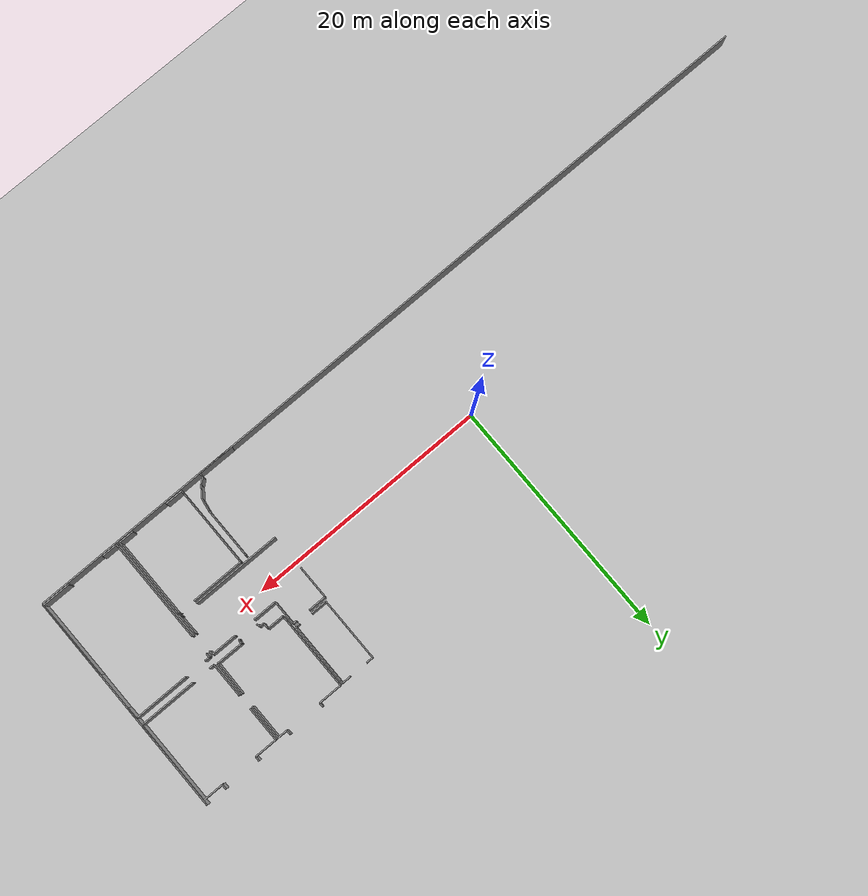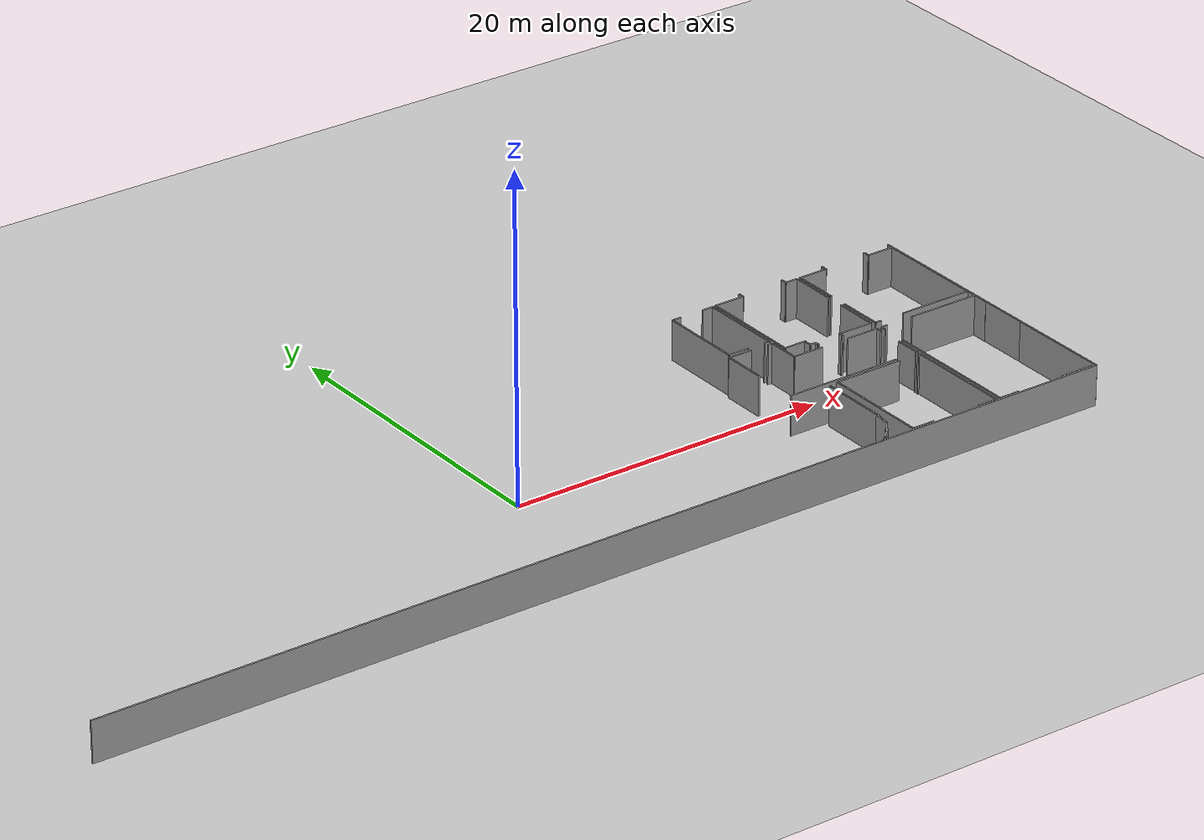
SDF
<sdf version="1.6">
 <world name="default">
  <model name="ground_plane">
   <static>1</static>
   <link name="link">
    <collision name="collision">
     <geometry><plane><normal>0 0 1</normal><size>100 100</size></plane></geometry>
     <surface><friction><ode><mu>100</mu><mu2>50</mu2></ode></friction></surface>
    </collision>
    <visual name="visual">
     <cast_shadows>0</cast_shadows>
     <geometry><plane><normal>0 0 1</normal><size>100 100</size></plane></geometry>
     <material>
      <script><uri>file://media/materials/scripts/gazebo.material</uri><name>Gazebo/Grey</name></script>
     </material>
    </visual>
   </link>
  </model>
  <model name="0510034869_A-40">
   <static>1</static>
   <link name="Wall_174">
    <collision name="Wall_174_Collision">
     <geometry><box><size>0.133587301587 0.1 2.5</size></box></geometry>
     <pose>0.0667936507936 0 1.25 0 0 0</pose>
    </collision>
    <visual name="Wall_174_Visual">
     <pose>0.0667936507936 0 1.25 0 0 0</pose>
     <geometry><box><size>0.133587301587 0.1 2.5</size></box></geometry>
     <material>
      <script><uri>file://media/materials/scripts/gazebo.material</uri><name>Gazebo/Grey</name></script>
      <ambient>1 1 1 1</ambient>
     </material>
    </visual>
    <pose>58.0534603175 -11.496 0 0 0 3.14159265359</pose>
   </link>
   <link name="Wall_175">
    <collision name="Wall_175_Collision">
     <geometry><box><size>7.32088888889 0.1 2.5</size></box></geometry>
     <pose>3.66044444444 0 1.25 0 0 0</pose>
    </collision>
    <visual name="Wall_175_Visual">
     <pose>3.66044444444 0 1.25 0 0 0</pose>
     <geometry><box><size>7.32088888889 0.1 2.5</size></box></geometry>
     <material>
      <script><uri>file://media/materials/scripts/gazebo.material</uri><name>Gazebo/Grey</name></script>
      <ambient>1 1 1 1</ambient>
     </material>
    </visual>
    <pose>56.5498412698 -11.496 0 0 0 3.14159265359</pose>
   </link>
   <link name="Wall_177">
    <collision name="Wall_177_Collision">
     <geometry><box><size>2.73714285714 0.1 2.5</size></box></geometry>
     <pose>1.36857142857 0 1.25 0 0 0</pose>
    </collision>
    <visual name="Wall_177_Visual">
     <pose>1.36857142857 0 1.25 0 0 0</pose>
     <geometry><box><size>2.73714285714 0.1 2.5</size></box></geometry>
     <material>
      <script><uri>file://media/materials/scripts/gazebo.material</uri><name>Gazebo/Grey</name></script>
      <ambient>1 1 1 1</ambient>
     </material>
    </visual>
    <pose>49.228952381 -8.64914285714 0 0 0 1.57079632679</pose>
   </link>
   <link name="Wall_178">
    <collision name="Wall_178_Collision">
     <geometry><box><size>1.4940952381 0.1 2.5</size></box></geometry>
     <pose>0.747047619048 0 1.25 0 0 0</pose>
    </collision>
    <visual name="Wall_178_Visual">
     <pose>0.747047619048 0 1.25 0 0 0</pose>
     <geometry><box><size>1.4940952381 0.1 2.5</size></box></geometry>
     <material>
      <script><uri>file://media/materials/scripts/gazebo.material</uri><name>Gazebo/Grey</name></script>
      <ambient>1 1 1 1</ambient>
     </material>
    </visual>
    <pose>49.228952381 -5.912 0 0 0 0.0</pose>
   </link>
   <link name="Wall_179">
    <collision name="Wall_179_Collision">
     <geometry><box><size>0.30946031746 0.1 2.5</size></box></geometry>
     <pose>0.15473015873 0 1.25 0 0 0</pose>
    </collision>
    <visual name="Wall_179_Visual">
     <pose>0.15473015873 0 1.25 0 0 0</pose>
     <geometry><box><size>0.30946031746 0.1 2.5</size></box></geometry>
     <material>
      <script><uri>file://media/materials/scripts/gazebo.material</uri><name>Gazebo/Grey</name></script>
      <ambient>1 1 1 1</ambient>
     </material>
    </visual>
    <pose>51.8915555556 -5.912 0 0 0 0.0</pose>
   </link>
   <link name="Wall_180">
    <collision name="Wall_180_Collision">
     <geometry><box><size>2.02184126984 0.1 2.5</size></box></geometry>
     <pose>1.01092063492 0 1.25 0 0 0</pose>
    </collision>
    <visual name="Wall_180_Visual">
     <pose>1.01092063492 0 1.25 0 0 0</pose>
     <geometry><box><size>2.02184126984 0.1 2.5</size></box></geometry>
     <material>
      <script><uri>file://media/materials/scripts/gazebo.material</uri><name>Gazebo/Grey</name></script>
      <ambient>1 1 1 1</ambient>
     </material>
    </visual>
    <pose>52.201015873 -5.912 0 0 0 -1.57079632679</pose>
   </link>
   <link name="Wall_181">
    <collision name="Wall_181_Collision">
     <geometry><box><size>1.96342857143 0.1 2.5</size></box></geometry>
     <pose>0.981714285714 0 1.25 0 0 0</pose>
    </collision>
    <visual name="Wall_181_Visual">
     <pose>0.981714285714 0 1.25 0 0 0</pose>
     <geometry><box><size>1.96342857143 0.1 2.5</size></box></geometry>
     <material>
      <script><uri>file://media/materials/scripts/gazebo.material</uri><name>Gazebo/Grey</name></script>
      <ambient>1 1 1 1</ambient>
     </material>
    </visual>
    <pose>52.201015873 -7.93384126984 0 0 0 0.0</pose>
   </link>
   <link name="Wall_182">
    <collision name="Wall_182_Collision">
     <geometry><box><size>2.09828571429 0.1 2.5</size></box></geometry>
     <pose>1.04914285714 0 1.25 0 0 0</pose>
    </collision>
    <visual name="Wall_182_Visual">
     <pose>1.04914285714 0 1.25 0 0 0</pose>
     <geometry><box><size>2.09828571429 0.1 2.5</size></box></geometry>
     <material>
      <script><uri>file://media/materials/scripts/gazebo.material</uri><name>Gazebo/Grey</name></script>
      <ambient>1 1 1 1</ambient>
     </material>
    </visual>
    <pose>55.9141587302 -7.93384126984 0 0 0 0.0</pose>
   </link>
   <link name="Wall_183">
    <collision name="Wall_183_Collision">
     <geometry><box><size>0.352380952381 0.1 2.5</size></box></geometry>
     <pose>0.17619047619 0 1.25 0 0 0</pose>
    </collision>
    <visual name="Wall_183_Visual">
     <pose>0.17619047619 0 1.25 0 0 0</pose>
     <geometry><box><size>0.352380952381 0.1 2.5</size></box></geometry>
     <material>
      <script><uri>file://media/materials/scripts/gazebo.material</uri><name>Gazebo/Grey</name></script>
      <ambient>1 1 1 1</ambient>
     </material>
    </visual>
    <pose>58.0124444444 -7.93384126984 0 0 0 -1.57079632679</pose>
   </link>
   <link name="Wall_184">
    <collision name="Wall_184_Collision">
     <geometry><box><size>1.62870701128 0.1 2.5</size></box></geometry>
     <pose>0.814353505641 0 1.25 0 0 0</pose>
    </collision>
    <visual name="Wall_184_Visual">
     <pose>0.814353505641 0 1.25 0 0 0</pose>
     <geometry><box><size>1.62870701128 0.1 2.5</size></box></geometry>
     <material>
      <script><uri>file://media/materials/scripts/gazebo.material</uri><name>Gazebo/Grey</name></script>
      <ambient>1 1 1 1</ambient>
     </material>
    </visual>
    <pose>58.0124444444 -9.86780952381 0 0 0 -1.5456105756</pose>
   </link>
   <link name="Wall_185">
    <collision name="Wall_185_Collision">
     <geometry><box><size>0.320888888889 0.1 2.5</size></box></geometry>
     <pose>0.160444444444 0 1.25 0 0 0</pose>
    </collision>
    <visual name="Wall_185_Visual">
     <pose>0.160444444444 0 1.25 0 0 0</pose>
     <geometry><box><size>0.320888888889 0.1 2.5</size></box></geometry>
     <material>
      <script><uri>file://media/materials/scripts/gazebo.material</uri><name>Gazebo/Grey</name></script>
      <ambient>1 1 1 1</ambient>
     </material>
    </visual>
    <pose>52.1946666667 -5.62946031746 0 0 0 3.14159265359</pose>
   </link>
   <link name="Wall_186">
    <collision name="Wall_186_Collision">
     <geometry><box><size>1.32761904762 0.1 2.5</size></box></geometry>
     <pose>0.66380952381 0 1.25 0 0 0</pose>
    </collision>
    <visual name="Wall_186_Visual">
     <pose>0.66380952381 0 1.25 0 0 0</pose>
     <geometry><box><size>1.32761904762 0.1 2.5</size></box></geometry>
     <material>
      <script><uri>file://media/materials/scripts/gazebo.material</uri><name>Gazebo/Grey</name></script>
      <ambient>1 1 1 1</ambient>
     </material>
    </visual>
    <pose>50.731047619 -5.62946031746 0 0 0 3.14159265359</pose>
   </link>
   <link name="Wall_187">
    <collision name="Wall_187_Collision">
     <geometry><box><size>5.22082539683 0.1 2.5</size></box></geometry>
     <pose>2.61041269841 0 1.25 0 0 0</pose>
    </collision>
    <visual name="Wall_187_Visual">
     <pose>2.61041269841 0 1.25 0 0 0</pose>
     <geometry><box><size>5.22082539683 0.1 2.5</size></box></geometry>
     <material>
      <script><uri>file://media/materials/scripts/gazebo.material</uri><name>Gazebo/Grey</name></script>
      <ambient>1 1 1 1</ambient>
     </material>
    </visual>
    <pose>49.4034285714 -5.62946031746 0 0 0 1.57079632679</pose>
   </link>
   <link name="Wall_188">
    <collision name="Wall_188_Collision">
     <geometry><box><size>0.57180952381 0.1 2.5</size></box></geometry>
     <pose>0.285904761905 0 1.25 0 0 0</pose>
    </collision>
    <visual name="Wall_188_Visual">
     <pose>0.285904761905 0 1.25 0 0 0</pose>
     <geometry><box><size>0.57180952381 0.1 2.5</size></box></geometry>
     <material>
      <script><uri>file://media/materials/scripts/gazebo.material</uri><name>Gazebo/Grey</name></script>
      <ambient>1 1 1 1</ambient>
     </material>
    </visual>
    <pose>49.4034285714 -0.408634920635 0 0 0 0.0</pose>
   </link>
   <link name="Wall_189">
    <collision name="Wall_189_Collision">
     <geometry><box><size>0.725968253968 0.1 2.5</size></box></geometry>
     <pose>0.362984126984 0 1.25 0 0 0</pose>
    </collision>
    <visual name="Wall_189_Visual">
     <pose>0.362984126984 0 1.25 0 0 0</pose>
     <geometry><box><size>0.725968253968 0.1 2.5</size></box></geometry>
     <material>
      <script><uri>file://media/materials/scripts/gazebo.material</uri><name>Gazebo/Grey</name></script>
      <ambient>1 1 1 1</ambient>
     </material>
    </visual>
    <pose>51.4708571429 -0.408634920635 0 0 0 0.0</pose>
   </link>
   <link name="Wall_190">
    <collision name="Wall_190_Collision">
     <geometry><box><size>5.22082584313 0.1 2.5</size></box></geometry>
     <pose>2.61041292156 0 1.25 0 0 0</pose>
    </collision>
    <visual name="Wall_190_Visual">
     <pose>2.61041292156 0 1.25 0 0 0</pose>
     <geometry><box><size>5.22082584313 0.1 2.5</size></box></geometry>
     <material>
      <script><uri>file://media/materials/scripts/gazebo.material</uri><name>Gazebo/Grey</name></script>
      <ambient>1 1 1 1</ambient>
     </material>
    </visual>
    <pose>52.1968253968 -0.408634920635 0 0 0 -1.57120981123</pose>
   </link>
   <link name="Wall_191">
    <collision name="Wall_191_Collision">
     <geometry><box><size>2.2113015873 0.1 2.5</size></box></geometry>
     <pose>1.10565079365 0 1.25 0 0 0</pose>
    </collision>
    <visual name="Wall_191_Visual">
     <pose>1.10565079365 0 1.25 0 0 0</pose>
     <geometry><box><size>2.2113015873 0.1 2.5</size></box></geometry>
     <material>
      <script><uri>file://media/materials/scripts/gazebo.material</uri><name>Gazebo/Grey</name></script>
      <ambient>1 1 1 1</ambient>
     </material>
    </visual>
    <pose>58.1399365079 -7.21053968254 0 0 0 3.14159265359</pose>
   </link>
   <link name="Wall_192">
    <collision name="Wall_192_Collision">
     <geometry><box><size>0.301206349206 0.1 2.5</size></box></geometry>
     <pose>0.150603174603 0 1.25 0 0 0</pose>
    </collision>
    <visual name="Wall_192_Visual">
     <pose>0.150603174603 0 1.25 0 0 0</pose>
     <geometry><box><size>0.301206349206 0.1 2.5</size></box></geometry>
     <material>
      <script><uri>file://media/materials/scripts/gazebo.material</uri><name>Gazebo/Grey</name></script>
      <ambient>1 1 1 1</ambient>
     </material>
    </visual>
    <pose>55.9286349206 -7.21053968254 0 0 0 -1.57079632679</pose>
   </link>
   <link name="Wall_193">
    <collision name="Wall_193_Collision">
     <geometry><box><size>0.102095238095 0.1 2.5</size></box></geometry>
     <pose>0.0510476190476 0 1.25 0 0 0</pose>
    </collision>
    <visual name="Wall_193_Visual">
     <pose>0.0510476190476 0 1.25 0 0 0</pose>
     <geometry><box><size>0.102095238095 0.1 2.5</size></box></geometry>
     <material>
      <script><uri>file://media/materials/scripts/gazebo.material</uri><name>Gazebo/Grey</name></script>
      <ambient>1 1 1 1</ambient>
     </material>
    </visual>
    <pose>55.9286349206 -7.51174603175 0 0 0 3.14159265359</pose>
   </link>
   <link name="Wall_194">
    <collision name="Wall_194_Collision">
     <geometry><box><size>0.0918095238095 0.1 2.5</size></box></geometry>
     <pose>0.0459047619048 0 1.25 0 0 0</pose>
    </collision>
    <visual name="Wall_194_Visual">
     <pose>0.0459047619048 0 1.25 0 0 0</pose>
     <geometry><box><size>0.0918095238095 0.1 2.5</size></box></geometry>
     <material>
      <script><uri>file://media/materials/scripts/gazebo.material</uri><name>Gazebo/Grey</name></script>
      <ambient>1 1 1 1</ambient>
     </material>
    </visual>
    <pose>54.2544761905 -7.51174603175 0 0 0 3.14159265359</pose>
   </link>
   <link name="Wall_195">
    <collision name="Wall_195_Collision">
     <geometry><box><size>0.215492063492 0.1 2.5</size></box></geometry>
     <pose>0.107746031746 0 1.25 0 0 0</pose>
    </collision>
    <visual name="Wall_195_Visual">
     <pose>0.107746031746 0 1.25 0 0 0</pose>
     <geometry><box><size>0.215492063492 0.1 2.5</size></box></geometry>
     <material>
      <script><uri>file://media/materials/scripts/gazebo.material</uri><name>Gazebo/Grey</name></script>
      <ambient>1 1 1 1</ambient>
     </material>
    </visual>
    <pose>54.1626666667 -7.51174603175 0 0 0 1.57079632679</pose>
   </link>
   <link name="Wall_196">
    <collision name="Wall_196_Collision">
     <geometry><box><size>0.359111111111 0.1 2.5</size></box></geometry>
     <pose>0.179555555556 0 1.25 0 0 0</pose>
    </collision>
    <visual name="Wall_196_Visual">
     <pose>0.179555555556 0 1.25 0 0 0</pose>
     <geometry><box><size>0.359111111111 0.1 2.5</size></box></geometry>
     <material>
      <script><uri>file://media/materials/scripts/gazebo.material</uri><name>Gazebo/Grey</name></script>
      <ambient>1 1 1 1</ambient>
     </material>
    </visual>
    <pose>54.1626666667 -7.29625396825 0 0 0 3.14159265359</pose>
   </link>
   <link name="Wall_197">
    <collision name="Wall_197_Collision">
     <geometry><box><size>0.492698412698 0.1 2.5</size></box></geometry>
     <pose>0.246349206349 0 1.25 0 0 0</pose>
    </collision>
    <visual name="Wall_197_Visual">
     <pose>0.246349206349 0 1.25 0 0 0</pose>
     <geometry><box><size>0.492698412698 0.1 2.5</size></box></geometry>
     <material>
      <script><uri>file://media/materials/scripts/gazebo.material</uri><name>Gazebo/Grey</name></script>
      <ambient>1 1 1 1</ambient>
     </material>
    </visual>
    <pose>53.8035555556 -7.29625396825 0 0 0 1.57079632679</pose>
   </link>
   <link name="Wall_198">
    <collision name="Wall_198_Collision">
     <geometry><box><size>1.38603174603 0.1 2.5</size></box></geometry>
     <pose>0.693015873016 0 1.25 0 0 0</pose>
    </collision>
    <visual name="Wall_198_Visual">
     <pose>0.693015873016 0 1.25 0 0 0</pose>
     <geometry><box><size>1.38603174603 0.1 2.5</size></box></geometry>
     <material>
      <script><uri>file://media/materials/scripts/gazebo.material</uri><name>Gazebo/Grey</name></script>
      <ambient>1 1 1 1</ambient>
     </material>
    </visual>
    <pose>53.8035555556 -6.80355555556 0 0 0 3.14159265359</pose>
   </link>
   <link name="Wall_199">
    <collision name="Wall_199_Collision">
     <geometry><box><size>6.4206984127 0.1 2.5</size></box></geometry>
     <pose>3.21034920635 0 1.25 0 0 0</pose>
    </collision>
    <visual name="Wall_199_Visual">
     <pose>3.21034920635 0 1.25 0 0 0</pose>
     <geometry><box><size>6.4206984127 0.1 2.5</size></box></geometry>
     <material>
      <script><uri>file://media/materials/scripts/gazebo.material</uri><name>Gazebo/Grey</name></script>
      <ambient>1 1 1 1</ambient>
     </material>
    </visual>
    <pose>52.4175238095 -6.80355555556 0 0 0 1.57079632679</pose>
   </link>
   <link name="Wall_200">
    <collision name="Wall_200_Collision">
     <geometry><box><size>1.93714285714 0.1 2.5</size></box></geometry>
     <pose>0.968571428571 0 1.25 0 0 0</pose>
    </collision>
    <visual name="Wall_200_Visual">
     <pose>0.968571428571 0 1.25 0 0 0</pose>
     <geometry><box><size>1.93714285714 0.1 2.5</size></box></geometry>
     <material>
      <script><uri>file://media/materials/scripts/gazebo.material</uri><name>Gazebo/Grey</name></script>
      <ambient>1 1 1 1</ambient>
     </material>
    </visual>
    <pose>52.4175238095 -0.382857142857 0 0 0 0.0</pose>
   </link>
   <link name="Wall_201">
    <collision name="Wall_201_Collision">
     <geometry><box><size>0.375619047619 0.1 2.5</size></box></geometry>
     <pose>0.18780952381 0 1.25 0 0 0</pose>
    </collision>
    <visual name="Wall_201_Visual">
     <pose>0.18780952381 0 1.25 0 0 0</pose>
     <geometry><box><size>0.375619047619 0.1 2.5</size></box></geometry>
     <material>
      <script><uri>file://media/materials/scripts/gazebo.material</uri><name>Gazebo/Grey</name></script>
      <ambient>1 1 1 1</ambient>
     </material>
    </visual>
    <pose>54.3546666667 -0.382857142857 0 0 0 1.57079632679</pose>
   </link>
   <link name="Wall_202">
    <collision name="Wall_202_Collision">
     <geometry><box><size>0.392380952381 0.1 2.5</size></box></geometry>
     <pose>0.19619047619 0 1.25 0 0 0</pose>
    </collision>
    <visual name="Wall_202_Visual">
     <pose>0.19619047619 0 1.25 0 0 0</pose>
     <geometry><box><size>0.392380952381 0.1 2.5</size></box></geometry>
     <material>
      <script><uri>file://media/materials/scripts/gazebo.material</uri><name>Gazebo/Grey</name></script>
      <ambient>1 1 1 1</ambient>
     </material>
    </visual>
    <pose>57.3771428571 -0.0072380952381 0 0 0 -1.57079632679</pose>
   </link>
   <link name="Wall_203">
    <collision name="Wall_203_Collision">
     <geometry><box><size>0.801523809524 0.1 2.5</size></box></geometry>
     <pose>0.400761904762 0 1.25 0 0 0</pose>
    </collision>
    <visual name="Wall_203_Visual">
     <pose>0.400761904762 0 1.25 0 0 0</pose>
     <geometry><box><size>0.801523809524 0.1 2.5</size></box></geometry>
     <material>
      <script><uri>file://media/materials/scripts/gazebo.material</uri><name>Gazebo/Grey</name></script>
      <ambient>1 1 1 1</ambient>
     </material>
    </visual>
    <pose>57.3771428571 -0.399619047619 0 0 0 0.0</pose>
   </link>
   <link name="Wall_204">
    <collision name="Wall_204_Collision">
     <geometry><box><size>2.89726984127 0.1 2.5</size></box></geometry>
     <pose>1.44863492063 0 1.25 0 0 0</pose>
    </collision>
    <visual name="Wall_204_Visual">
     <pose>1.44863492063 0 1.25 0 0 0</pose>
     <geometry><box><size>2.89726984127 0.1 2.5</size></box></geometry>
     <material>
      <script><uri>file://media/materials/scripts/gazebo.material</uri><name>Gazebo/Grey</name></script>
      <ambient>1 1 1 1</ambient>
     </material>
    </visual>
    <pose>58.1786666667 -0.399619047619 0 0 0 -1.57079632679</pose>
   </link>
   <link name="Wall_205">
    <collision name="Wall_205_Collision">
     <geometry><box><size>2.75557378094 0.1 2.5</size></box></geometry>
     <pose>1.37778689047 0 1.25 0 0 0</pose>
    </collision>
    <visual name="Wall_205_Visual">
     <pose>1.37778689047 0 1.25 0 0 0</pose>
     <geometry><box><size>2.75557378094 0.1 2.5</size></box></geometry>
     <material>
      <script><uri>file://media/materials/scripts/gazebo.material</uri><name>Gazebo/Grey</name></script>
      <ambient>1 1 1 1</ambient>
     </material>
    </visual>
    <pose>58.1786666667 -4.45523809524 0 0 0 -1.58485199618</pose>
   </link>
   <link name="Wall_206">
    <collision name="Wall_206_Collision">
     <geometry><box><size>4.65968253968 0.1 2.5</size></box></geometry>
     <pose>2.32984126984 0 1.25 0 0 0</pose>
    </collision>
    <visual name="Wall_206_Visual">
     <pose>2.32984126984 0 1.25 0 0 0</pose>
     <geometry><box><size>4.65968253968 0.1 2.5</size></box></geometry>
     <material>
      <script><uri>file://media/materials/scripts/gazebo.material</uri><name>Gazebo/Grey</name></script>
      <ambient>1 1 1 1</ambient>
     </material>
    </visual>
    <pose>65.008 -7.31161904762 0 0 0 3.14159265359</pose>
   </link>
   <link name="Wall_207">
    <collision name="Wall_207_Collision">
     <geometry><box><size>0.407746031746 0.1 2.5</size></box></geometry>
     <pose>0.203873015873 0 1.25 0 0 0</pose>
    </collision>
    <visual name="Wall_207_Visual">
     <pose>0.203873015873 0 1.25 0 0 0</pose>
     <geometry><box><size>0.407746031746 0.1 2.5</size></box></geometry>
     <material>
      <script><uri>file://media/materials/scripts/gazebo.material</uri><name>Gazebo/Grey</name></script>
      <ambient>1 1 1 1</ambient>
     </material>
    </visual>
    <pose>58.8016507937 -7.31161904762 0 0 0 3.14159265359</pose>
   </link>
   <link name="Wall_208">
    <collision name="Wall_208_Collision">
     <geometry><box><size>2.83949206349 0.1 2.5</size></box></geometry>
     <pose>1.41974603175 0 1.25 0 0 0</pose>
    </collision>
    <visual name="Wall_208_Visual">
     <pose>1.41974603175 0 1.25 0 0 0</pose>
     <geometry><box><size>2.83949206349 0.1 2.5</size></box></geometry>
     <material>
      <script><uri>file://media/materials/scripts/gazebo.material</uri><name>Gazebo/Grey</name></script>
      <ambient>1 1 1 1</ambient>
     </material>
    </visual>
    <pose>58.3939047619 -7.31161904762 0 0 0 1.57079632679</pose>
   </link>
   <link name="Wall_209">
    <collision name="Wall_209_Collision">
     <geometry><box><size>2.87682539683 0.1 2.5</size></box></geometry>
     <pose>1.43841269841 0 1.25 0 0 0</pose>
    </collision>
    <visual name="Wall_209_Visual">
     <pose>1.43841269841 0 1.25 0 0 0</pose>
     <geometry><box><size>2.87682539683 0.1 2.5</size></box></geometry>
     <material>
      <script><uri>file://media/materials/scripts/gazebo.material</uri><name>Gazebo/Grey</name></script>
      <ambient>1 1 1 1</ambient>
     </material>
    </visual>
    <pose>58.3939047619 -3.28114285714 0 0 0 1.57079632679</pose>
   </link>
   <link name="Wall_210">
    <collision name="Wall_210_Collision">
     <geometry><box><size>1.85346031746 0.1 2.5</size></box></geometry>
     <pose>0.92673015873 0 1.25 0 0 0</pose>
    </collision>
    <visual name="Wall_210_Visual">
     <pose>0.92673015873 0 1.25 0 0 0</pose>
     <geometry><box><size>1.85346031746 0.1 2.5</size></box></geometry>
     <material>
      <script><uri>file://media/materials/scripts/gazebo.material</uri><name>Gazebo/Grey</name></script>
      <ambient>1 1 1 1</ambient>
     </material>
    </visual>
    <pose>58.3939047619 -0.404317460317 0 0 0 0.0</pose>
   </link>
   <link name="Wall_211">
    <collision name="Wall_211_Collision">
     <geometry><box><size>0.404317460317 0.1 2.5</size></box></geometry>
     <pose>0.202158730159 0 1.25 0 0 0</pose>
    </collision>
    <visual name="Wall_211_Visual">
     <pose>0.202158730159 0 1.25 0 0 0</pose>
     <geometry><box><size>0.404317460317 0.1 2.5</size></box></geometry>
     <material>
      <script><uri>file://media/materials/scripts/gazebo.material</uri><name>Gazebo/Grey</name></script>
      <ambient>1 1 1 1</ambient>
     </material>
    </visual>
    <pose>60.2473650794 -0.404317460317 0 0 0 1.57079632679</pose>
   </link>
   <link name="Wall_212">
    <collision name="Wall_212_Collision">
     <geometry><box><size>0.423238095238 0.1 2.5</size></box></geometry>
     <pose>0.211619047619 0 1.25 0 0 0</pose>
    </collision>
    <visual name="Wall_212_Visual">
     <pose>0.211619047619 0 1.25 0 0 0</pose>
     <geometry><box><size>0.423238095238 0.1 2.5</size></box></geometry>
     <material>
      <script><uri>file://media/materials/scripts/gazebo.material</uri><name>Gazebo/Grey</name></script>
      <ambient>1 1 1 1</ambient>
     </material>
    </visual>
    <pose>63.2979047619 -0.0 0 0 0 -1.57079632679</pose>
   </link>
   <link name="Wall_213">
    <collision name="Wall_213_Collision">
     <geometry><box><size>1.71352380952 0.1 2.5</size></box></geometry>
     <pose>0.856761904762 0 1.25 0 0 0</pose>
    </collision>
    <visual name="Wall_213_Visual">
     <pose>0.856761904762 0 1.25 0 0 0</pose>
     <geometry><box><size>1.71352380952 0.1 2.5</size></box></geometry>
     <material>
      <script><uri>file://media/materials/scripts/gazebo.material</uri><name>Gazebo/Grey</name></script>
      <ambient>1 1 1 1</ambient>
     </material>
    </visual>
    <pose>63.2979047619 -0.423238095238 0 0 0 0.0</pose>
   </link>
   <link name="Wall_214">
    <collision name="Wall_214_Collision">
     <geometry><box><size>6.88838180564 0.1 2.5</size></box></geometry>
     <pose>3.44419090282 0 1.25 0 0 0</pose>
    </collision>
    <visual name="Wall_214_Visual">
     <pose>3.44419090282 0 1.25 0 0 0</pose>
     <geometry><box><size>6.88838180564 0.1 2.5</size></box></geometry>
     <material>
      <script><uri>file://media/materials/scripts/gazebo.material</uri><name>Gazebo/Grey</name></script>
      <ambient>1 1 1 1</ambient>
     </material>
    </visual>
    <pose>65.0114285714 -0.423238095238 0 0 0 -1.57129405931</pose>
   </link>
   <link name="Wall_215">
    <collision name="Wall_215_Collision">
     <geometry><box><size>2.34361904762 0.1 2.5</size></box></geometry>
     <pose>1.17180952381 0 1.25 0 0 0</pose>
    </collision>
    <visual name="Wall_215_Visual">
     <pose>1.17180952381 0 1.25 0 0 0</pose>
     <geometry><box><size>2.34361904762 0.1 2.5</size></box></geometry>
     <material>
      <script><uri>file://media/materials/scripts/gazebo.material</uri><name>Gazebo/Grey</name></script>
      <ambient>1 1 1 1</ambient>
     </material>
    </visual>
    <pose>65.0372063492 -18.4246349206 0 0 0 3.14159265359</pose>
   </link>
   <link name="Wall_216">
    <collision name="Wall_216_Collision">
     <geometry><box><size>1.29625396825 0.1 2.5</size></box></geometry>
     <pose>0.648126984127 0 1.25 0 0 0</pose>
    </collision>
    <visual name="Wall_216_Visual">
     <pose>0.648126984127 0 1.25 0 0 0</pose>
     <geometry><box><size>1.29625396825 0.1 2.5</size></box></geometry>
     <material>
      <script><uri>file://media/materials/scripts/gazebo.material</uri><name>Gazebo/Grey</name></script>
      <ambient>1 1 1 1</ambient>
     </material>
    </visual>
    <pose>59.5922539683 -18.4246349206 0 0 0 3.14159265359</pose>
   </link>
   <link name="Wall_217">
    <collision name="Wall_217_Collision">
     <geometry><box><size>8.54196825397 0.1 2.5</size></box></geometry>
     <pose>4.27098412698 0 1.25 0 0 0</pose>
    </collision>
    <visual name="Wall_217_Visual">
     <pose>4.27098412698 0 1.25 0 0 0</pose>
     <geometry><box><size>8.54196825397 0.1 2.5</size></box></geometry>
     <material>
      <script><uri>file://media/materials/scripts/gazebo.material</uri><name>Gazebo/Grey</name></script>
      <ambient>1 1 1 1</ambient>
     </material>
    </visual>
    <pose>58.296 -18.4246349206 0 0 0 1.57079632679</pose>
   </link>
   <link name="Wall_218">
    <collision name="Wall_218_Collision">
     <geometry><box><size>0.374476190476 0.1 2.5</size></box></geometry>
     <pose>0.187238095238 0 1.25 0 0 0</pose>
    </collision>
    <visual name="Wall_218_Visual">
     <pose>0.187238095238 0 1.25 0 0 0</pose>
     <geometry><box><size>0.374476190476 0.1 2.5</size></box></geometry>
     <material>
      <script><uri>file://media/materials/scripts/gazebo.material</uri><name>Gazebo/Grey</name></script>
      <ambient>1 1 1 1</ambient>
     </material>
    </visual>
    <pose>58.296 -8.31238095238 0 0 0 1.57079632679</pose>
   </link>
   <link name="Wall_219">
    <collision name="Wall_219_Collision">
     <geometry><box><size>0.422476190476 0.1 2.5</size></box></geometry>
     <pose>0.211238095238 0 1.25 0 0 0</pose>
    </collision>
    <visual name="Wall_219_Visual">
     <pose>0.211238095238 0 1.25 0 0 0</pose>
     <geometry><box><size>0.422476190476 0.1 2.5</size></box></geometry>
     <material>
      <script><uri>file://media/materials/scripts/gazebo.material</uri><name>Gazebo/Grey</name></script>
      <ambient>1 1 1 1</ambient>
     </material>
    </visual>
    <pose>58.296 -7.9379047619 0 0 0 0.0</pose>
   </link>
   <link name="Wall_220">
    <collision name="Wall_220_Collision">
     <geometry><box><size>4.54158730159 0.1 2.5</size></box></geometry>
     <pose>2.27079365079 0 1.25 0 0 0</pose>
    </collision>
    <visual name="Wall_220_Visual">
     <pose>2.27079365079 0 1.25 0 0 0</pose>
     <geometry><box><size>4.54158730159 0.1 2.5</size></box></geometry>
     <material>
      <script><uri>file://media/materials/scripts/gazebo.material</uri><name>Gazebo/Grey</name></script>
      <ambient>1 1 1 1</ambient>
     </material>
    </visual>
    <pose>60.481015873 -7.9379047619 0 0 0 0.0</pose>
   </link>
   <link name="Wall_221">
    <collision name="Wall_221_Collision">
     <geometry><box><size>0.998603174603 0.1 2.5</size></box></geometry>
     <pose>0.499301587302 0 1.25 0 0 0</pose>
    </collision>
    <visual name="Wall_221_Visual">
     <pose>0.499301587302 0 1.25 0 0 0</pose>
     <geometry><box><size>0.998603174603 0.1 2.5</size></box></geometry>
     <material>
      <script><uri>file://media/materials/scripts/gazebo.material</uri><name>Gazebo/Grey</name></script>
      <ambient>1 1 1 1</ambient>
     </material>
    </visual>
    <pose>65.0226031746 -7.9379047619 0 0 0 -1.57079632679</pose>
   </link>
   <link name="Wall_222">
    <collision name="Wall_222_Collision">
     <geometry><box><size>6.42515945229 0.1 2.5</size></box></geometry>
     <pose>3.21257972615 0 1.25 0 0 0</pose>
    </collision>
    <visual name="Wall_222_Visual">
     <pose>3.21257972615 0 1.25 0 0 0</pose>
     <geometry><box><size>6.42515945229 0.1 2.5</size></box></geometry>
     <material>
      <script><uri>file://media/materials/scripts/gazebo.material</uri><name>Gazebo/Grey</name></script>
      <ambient>1 1 1 1</ambient>
     </material>
    </visual>
    <pose>65.0226031746 -11.9994920635 0 0 0 -1.5685235136</pose>
   </link>
   <link name="Wall_223">
    <collision name="Wall_223_Collision">
     <geometry><box><size>1.24901587302 0.1 2.5</size></box></geometry>
     <pose>0.624507936508 0 1.25 0 0 0</pose>
    </collision>
    <visual name="Wall_223_Visual">
     <pose>0.624507936508 0 1.25 0 0 0</pose>
     <geometry><box><size>1.24901587302 0.1 2.5</size></box></geometry>
     <material>
      <script><uri>file://media/materials/scripts/gazebo.material</uri><name>Gazebo/Grey</name></script>
      <ambient>1 1 1 1</ambient>
     </material>
    </visual>
    <pose>58.0333968254 -18.4011428571 0 0 0 3.14159265359</pose>
   </link>
   <link name="Wall_224">
    <collision name="Wall_224_Collision">
     <geometry><box><size>1.42780952381 0.1 2.5</size></box></geometry>
     <pose>0.713904761905 0 1.25 0 0 0</pose>
    </collision>
    <visual name="Wall_224_Visual">
     <pose>0.713904761905 0 1.25 0 0 0</pose>
     <geometry><box><size>1.42780952381 0.1 2.5</size></box></geometry>
     <material>
      <script><uri>file://media/materials/scripts/gazebo.material</uri><name>Gazebo/Grey</name></script>
      <ambient>1 1 1 1</ambient>
     </material>
    </visual>
    <pose>53.6867301587 -18.4011428571 0 0 0 3.14159265359</pose>
   </link>
   <link name="Wall_225">
    <collision name="Wall_225_Collision">
     <geometry><box><size>6.67441269841 0.1 2.5</size></box></geometry>
     <pose>3.33720634921 0 1.25 0 0 0</pose>
    </collision>
    <visual name="Wall_225_Visual">
     <pose>3.33720634921 0 1.25 0 0 0</pose>
     <geometry><box><size>6.67441269841 0.1 2.5</size></box></geometry>
     <material>
      <script><uri>file://media/materials/scripts/gazebo.material</uri><name>Gazebo/Grey</name></script>
      <ambient>1 1 1 1</ambient>
     </material>
    </visual>
    <pose>52.2589206349 -18.4011428571 0 0 0 1.57079632679</pose>
   </link>
   <link name="Wall_226">
    <collision name="Wall_226_Collision">
     <geometry><box><size>4.31301587302 0.1 2.5</size></box></geometry>
     <pose>2.15650793651 0 1.25 0 0 0</pose>
    </collision>
    <visual name="Wall_226_Visual">
     <pose>2.15650793651 0 1.25 0 0 0</pose>
     <geometry><box><size>4.31301587302 0.1 2.5</size></box></geometry>
     <material>
      <script><uri>file://media/materials/scripts/gazebo.material</uri><name>Gazebo/Grey</name></script>
      <ambient>1 1 1 1</ambient>
     </material>
    </visual>
    <pose>52.2589206349 -11.7267301587 0 0 0 0.0</pose>
   </link>
   <link name="Wall_227">
    <collision name="Wall_227_Collision">
     <geometry><box><size>0.134349206349 0.1 2.5</size></box></geometry>
     <pose>0.0671746031746 0 1.25 0 0 0</pose>
    </collision>
    <visual name="Wall_227_Visual">
     <pose>0.0671746031746 0 1.25 0 0 0</pose>
     <geometry><box><size>0.134349206349 0.1 2.5</size></box></geometry>
     <material>
      <script><uri>file://media/materials/scripts/gazebo.material</uri><name>Gazebo/Grey</name></script>
      <ambient>1 1 1 1</ambient>
     </material>
    </visual>
    <pose>57.9023492063 -11.7267301587 0 0 0 0.0</pose>
   </link>
   <link name="Wall_228">
    <collision name="Wall_228_Collision">
     <geometry><box><size>6.674413515 0.1 2.5</size></box></geometry>
     <pose>3.3372067575 0 1.25 0 0 0</pose>
    </collision>
    <visual name="Wall_228_Visual">
     <pose>3.3372067575 0 1.25 0 0 0</pose>
     <geometry><box><size>6.674413515 0.1 2.5</size></box></geometry>
     <material>
      <script><uri>file://media/materials/scripts/gazebo.material</uri><name>Gazebo/Grey</name></script>
      <ambient>1 1 1 1</ambient>
     </material>
    </visual>
    <pose>58.0366984127 -11.7267301587 0 0 0 -1.5712909901</pose>
   </link>
   <link name="Wall_229">
    <collision name="Wall_229_Collision">
     <geometry><box><size>3.00012698413 0.1 2.5</size></box></geometry>
     <pose>1.50006349206 0 1.25 0 0 0</pose>
    </collision>
    <visual name="Wall_229_Visual">
     <pose>1.50006349206 0 1.25 0 0 0</pose>
     <geometry><box><size>3.00012698413 0.1 2.5</size></box></geometry>
     <material>
      <script><uri>file://media/materials/scripts/gazebo.material</uri><name>Gazebo/Grey</name></script>
      <ambient>1 1 1 1</ambient>
     </material>
    </visual>
    <pose>50.4471111111 -18.5344761905 0 0 0 3.14159265359</pose>
   </link>
   <link name="Wall_242">
    <collision name="Wall_242_Collision">
     <geometry><box><size>4.13841269841 0.1 2.5</size></box></geometry>
     <pose>2.06920634921 0 1.25 0 0 0</pose>
    </collision>
    <visual name="Wall_242_Visual">
     <pose>2.06920634921 0 1.25 0 0 0</pose>
     <geometry><box><size>4.13841269841 0.1 2.5</size></box></geometry>
     <material>
      <script><uri>file://media/materials/scripts/gazebo.material</uri><name>Gazebo/Grey</name></script>
      <ambient>1 1 1 1</ambient>
     </material>
    </visual>
    <pose>51.6714920635 -11.8364444444 0 0 0 -1.57079632679</pose>
   </link>
   <link name="Wall_243">
    <collision name="Wall_243_Collision">
     <geometry><box><size>1.0594631517 0.1 2.5</size></box></geometry>
     <pose>0.529731575851 0 1.25 0 0 0</pose>
    </collision>
    <visual name="Wall_243_Visual">
     <pose>0.529731575851 0 1.25 0 0 0</pose>
     <geometry><box><size>1.0594631517 0.1 2.5</size></box></geometry>
     <material>
      <script><uri>file://media/materials/scripts/gazebo.material</uri><name>Gazebo/Grey</name></script>
      <ambient>1 1 1 1</ambient>
     </material>
    </visual>
    <pose>51.6714920635 -15.9748571429 0 0 0 -1.73356077227</pose>
   </link>
   <link name="Wall_244">
    <collision name="Wall_244_Collision">
     <geometry><box><size>1.00355529847 0.1 2.5</size></box></geometry>
     <pose>0.501777649235 0 1.25 0 0 0</pose>
    </collision>
    <visual name="Wall_244_Visual">
     <pose>0.501777649235 0 1.25 0 0 0</pose>
     <geometry><box><size>1.00355529847 0.1 2.5</size></box></geometry>
     <material>
      <script><uri>file://media/materials/scripts/gazebo.material</uri><name>Gazebo/Grey</name></script>
      <ambient>1 1 1 1</ambient>
     </material>
    </visual>
    <pose>51.4998095238 -17.0203174603 0 0 0 -2.19688544162</pose>
   </link>
   <link name="Wall_245">
    <collision name="Wall_245_Collision">
     <geometry><box><size>0.61448285586 0.1 2.5</size></box></geometry>
     <pose>0.30724142793 0 1.25 0 0 0</pose>
    </collision>
    <visual name="Wall_245_Visual">
     <pose>0.30724142793 0 1.25 0 0 0</pose>
     <geometry><box><size>0.61448285586 0.1 2.5</size></box></geometry>
     <material>
      <script><uri>file://media/materials/scripts/gazebo.material</uri><name>Gazebo/Grey</name></script>
      <ambient>1 1 1 1</ambient>
     </material>
    </visual>
    <pose>50.9117460317 -17.8335238095 0 0 0 -2.46497984007</pose>
   </link>
   <link name="Wall_246">
    <collision name="Wall_246_Collision">
     <geometry><box><size>0.316521685393 0.1 2.5</size></box></geometry>
     <pose>0.158260842697 0 1.25 0 0 0</pose>
    </collision>
    <visual name="Wall_246_Visual">
     <pose>0.158260842697 0 1.25 0 0 0</pose>
     <geometry><box><size>0.316521685393 0.1 2.5</size></box></geometry>
     <material>
      <script><uri>file://media/materials/scripts/gazebo.material</uri><name>Gazebo/Grey</name></script>
      <ambient>1 1 1 1</ambient>
     </material>
    </visual>
    <pose>50.4326349206 -18.2182857143 0 0 0 -1.5250451427</pose>
   </link>
   <link name="Wall_247">
    <collision name="Wall_247_Collision">
     <geometry><box><size>18.5479365079 0.1 2.5</size></box></geometry>
     <pose>9.27396825397 0 1.25 0 0 0</pose>
    </collision>
    <visual name="Wall_247_Visual">
     <pose>9.27396825397 0 1.25 0 0 0</pose>
     <geometry><box><size>18.5479365079 0.1 2.5</size></box></geometry>
     <material>
      <script><uri>file://media/materials/scripts/gazebo.material</uri><name>Gazebo/Grey</name></script>
      <ambient>1 1 1 1</ambient>
     </material>
    </visual>
    <pose>65.0372063492 -18.5479365079 0 0 0 1.57079632679</pose>
   </link>
   <link name="Wall_248">
    <collision name="Wall_248_Collision">
     <geometry><box><size>65.0372063492 0.1 2.5</size></box></geometry>
     <pose>32.5186031746 0 1.25 0 0 0</pose>
    </collision>
    <visual name="Wall_248_Visual">
     <pose>32.5186031746 0 1.25 0 0 0</pose>
     <geometry><box><size>65.0372063492 0.1 2.5</size></box></geometry>
     <material>
      <script><uri>file://media/materials/scripts/gazebo.material</uri><name>Gazebo/Grey</name></script>
      <ambient>1 1 1 1</ambient>
     </material>
    </visual>
    <pose>65.0372063492 -18.5479365079 0 0 0 3.14159265359</pose>
   </link>
   <pose>-32.5 9.29793650794 0 0 0 0</pose>
  </model>
 </world>
</sdf>
